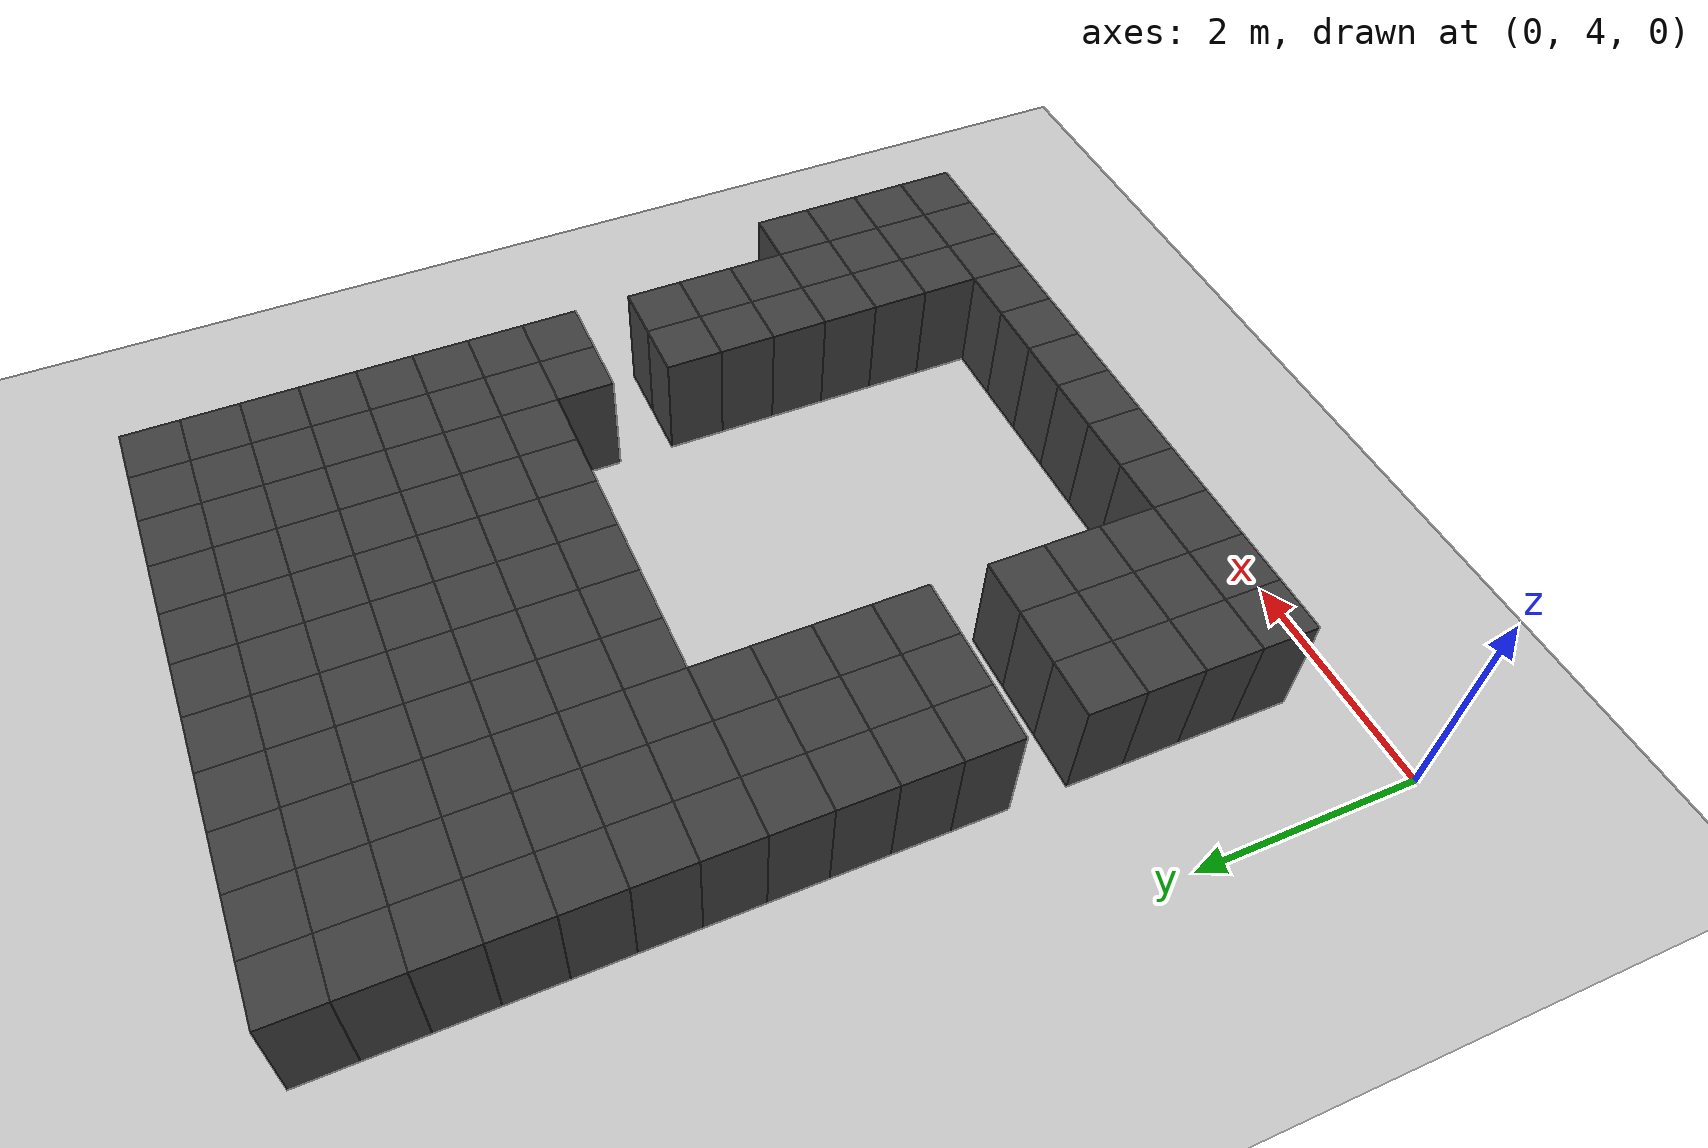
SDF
<sdf version="1.7">
 <world name="map_14190">
  <model name="ground_plane">
   <static>true</static>
   <link name="link">
    <collision name="collision">
     <geometry><plane><normal>0 0 1</normal><size>200 200</size></plane></geometry>
    </collision>
    <visual name="visual">
     <geometry><plane><normal>0 0 1</normal><size>200 200</size></plane></geometry>
     <material><ambient>0.8 0.8 0.8 1</ambient><diffuse>0.8 0.8 0.8 1</diffuse></material>
    </visual>
   </link>
  </model>
  <model name="maze_environment">
   <static>true</static>
   <link name="wall_27">
    <pose>1.250 12.250 0.500 0 0 0</pose>
    <collision name="col"><geometry><box><size>0.5 0.5 1.0</size></box></geometry></collision>
    <visual name="vis">
     <geometry><box><size>0.5 0.5 1.0</size></box></geometry>
     <material><ambient>0.15 0.15 0.15 1</ambient><diffuse>0.25 0.25 0.25 1</diffuse></material>
    </visual>
   </link>
   <link name="wall_28">
    <pose>1.750 12.250 0.500 0 0 0</pose>
    <collision name="col"><geometry><box><size>0.5 0.5 1.0</size></box></geometry></collision>
    <visual name="vis">
     <geometry><box><size>0.5 0.5 1.0</size></box></geometry>
     <material><ambient>0.15 0.15 0.15 1</ambient><diffuse>0.25 0.25 0.25 1</diffuse></material>
    </visual>
   </link>
   <link name="wall_29">
    <pose>2.250 12.250 0.500 0 0 0</pose>
    <collision name="col"><geometry><box><size>0.5 0.5 1.0</size></box></geometry></collision>
    <visual name="vis">
     <geometry><box><size>0.5 0.5 1.0</size></box></geometry>
     <material><ambient>0.15 0.15 0.15 1</ambient><diffuse>0.25 0.25 0.25 1</diffuse></material>
    </visual>
   </link>
   <link name="wall_30">
    <pose>2.750 12.250 0.500 0 0 0</pose>
    <collision name="col"><geometry><box><size>0.5 0.5 1.0</size></box></geometry></collision>
    <visual name="vis">
     <geometry><box><size>0.5 0.5 1.0</size></box></geometry>
     <material><ambient>0.15 0.15 0.15 1</ambient><diffuse>0.25 0.25 0.25 1</diffuse></material>
    </visual>
   </link>
   <link name="wall_31">
    <pose>3.250 12.250 0.500 0 0 0</pose>
    <collision name="col"><geometry><box><size>0.5 0.5 1.0</size></box></geometry></collision>
    <visual name="vis">
     <geometry><box><size>0.5 0.5 1.0</size></box></geometry>
     <material><ambient>0.15 0.15 0.15 1</ambient><diffuse>0.25 0.25 0.25 1</diffuse></material>
    </visual>
   </link>
   <link name="wall_32">
    <pose>3.750 12.250 0.500 0 0 0</pose>
    <collision name="col"><geometry><box><size>0.5 0.5 1.0</size></box></geometry></collision>
    <visual name="vis">
     <geometry><box><size>0.5 0.5 1.0</size></box></geometry>
     <material><ambient>0.15 0.15 0.15 1</ambient><diffuse>0.25 0.25 0.25 1</diffuse></material>
    </visual>
   </link>
   <link name="wall_33">
    <pose>4.250 12.250 0.500 0 0 0</pose>
    <collision name="col"><geometry><box><size>0.5 0.5 1.0</size></box></geometry></collision>
    <visual name="vis">
     <geometry><box><size>0.5 0.5 1.0</size></box></geometry>
     <material><ambient>0.15 0.15 0.15 1</ambient><diffuse>0.25 0.25 0.25 1</diffuse></material>
    </visual>
   </link>
   <link name="wall_34">
    <pose>4.750 12.250 0.500 0 0 0</pose>
    <collision name="col"><geometry><box><size>0.5 0.5 1.0</size></box></geometry></collision>
    <visual name="vis">
     <geometry><box><size>0.5 0.5 1.0</size></box></geometry>
     <material><ambient>0.15 0.15 0.15 1</ambient><diffuse>0.25 0.25 0.25 1</diffuse></material>
    </visual>
   </link>
   <link name="wall_35">
    <pose>5.250 12.250 0.500 0 0 0</pose>
    <collision name="col"><geometry><box><size>0.5 0.5 1.0</size></box></geometry></collision>
    <visual name="vis">
     <geometry><box><size>0.5 0.5 1.0</size></box></geometry>
     <material><ambient>0.15 0.15 0.15 1</ambient><diffuse>0.25 0.25 0.25 1</diffuse></material>
    </visual>
   </link>
   <link name="wall_36">
    <pose>5.750 12.250 0.500 0 0 0</pose>
    <collision name="col"><geometry><box><size>0.5 0.5 1.0</size></box></geometry></collision>
    <visual name="vis">
     <geometry><box><size>0.5 0.5 1.0</size></box></geometry>
     <material><ambient>0.15 0.15 0.15 1</ambient><diffuse>0.25 0.25 0.25 1</diffuse></material>
    </visual>
   </link>
   <link name="wall_37">
    <pose>6.250 12.250 0.500 0 0 0</pose>
    <collision name="col"><geometry><box><size>0.5 0.5 1.0</size></box></geometry></collision>
    <visual name="vis">
     <geometry><box><size>0.5 0.5 1.0</size></box></geometry>
     <material><ambient>0.15 0.15 0.15 1</ambient><diffuse>0.25 0.25 0.25 1</diffuse></material>
    </visual>
   </link>
   <link name="wall_74">
    <pose>1.250 11.750 0.500 0 0 0</pose>
    <collision name="col"><geometry><box><size>0.5 0.5 1.0</size></box></geometry></collision>
    <visual name="vis">
     <geometry><box><size>0.5 0.5 1.0</size></box></geometry>
     <material><ambient>0.15 0.15 0.15 1</ambient><diffuse>0.25 0.25 0.25 1</diffuse></material>
    </visual>
   </link>
   <link name="wall_75">
    <pose>1.750 11.750 0.500 0 0 0</pose>
    <collision name="col"><geometry><box><size>0.5 0.5 1.0</size></box></geometry></collision>
    <visual name="vis">
     <geometry><box><size>0.5 0.5 1.0</size></box></geometry>
     <material><ambient>0.15 0.15 0.15 1</ambient><diffuse>0.25 0.25 0.25 1</diffuse></material>
    </visual>
   </link>
   <link name="wall_76">
    <pose>2.250 11.750 0.500 0 0 0</pose>
    <collision name="col"><geometry><box><size>0.5 0.5 1.0</size></box></geometry></collision>
    <visual name="vis">
     <geometry><box><size>0.5 0.5 1.0</size></box></geometry>
     <material><ambient>0.15 0.15 0.15 1</ambient><diffuse>0.25 0.25 0.25 1</diffuse></material>
    </visual>
   </link>
   <link name="wall_77">
    <pose>2.750 11.750 0.500 0 0 0</pose>
    <collision name="col"><geometry><box><size>0.5 0.5 1.0</size></box></geometry></collision>
    <visual name="vis">
     <geometry><box><size>0.5 0.5 1.0</size></box></geometry>
     <material><ambient>0.15 0.15 0.15 1</ambient><diffuse>0.25 0.25 0.25 1</diffuse></material>
    </visual>
   </link>
   <link name="wall_78">
    <pose>3.250 11.750 0.500 0 0 0</pose>
    <collision name="col"><geometry><box><size>0.5 0.5 1.0</size></box></geometry></collision>
    <visual name="vis">
     <geometry><box><size>0.5 0.5 1.0</size></box></geometry>
     <material><ambient>0.15 0.15 0.15 1</ambient><diffuse>0.25 0.25 0.25 1</diffuse></material>
    </visual>
   </link>
   <link name="wall_79">
    <pose>3.750 11.750 0.500 0 0 0</pose>
    <collision name="col"><geometry><box><size>0.5 0.5 1.0</size></box></geometry></collision>
    <visual name="vis">
     <geometry><box><size>0.5 0.5 1.0</size></box></geometry>
     <material><ambient>0.15 0.15 0.15 1</ambient><diffuse>0.25 0.25 0.25 1</diffuse></material>
    </visual>
   </link>
   <link name="wall_80">
    <pose>4.250 11.750 0.500 0 0 0</pose>
    <collision name="col"><geometry><box><size>0.5 0.5 1.0</size></box></geometry></collision>
    <visual name="vis">
     <geometry><box><size>0.5 0.5 1.0</size></box></geometry>
     <material><ambient>0.15 0.15 0.15 1</ambient><diffuse>0.25 0.25 0.25 1</diffuse></material>
    </visual>
   </link>
   <link name="wall_81">
    <pose>4.750 11.750 0.500 0 0 0</pose>
    <collision name="col"><geometry><box><size>0.5 0.5 1.0</size></box></geometry></collision>
    <visual name="vis">
     <geometry><box><size>0.5 0.5 1.0</size></box></geometry>
     <material><ambient>0.15 0.15 0.15 1</ambient><diffuse>0.25 0.25 0.25 1</diffuse></material>
    </visual>
   </link>
   <link name="wall_82">
    <pose>5.250 11.750 0.500 0 0 0</pose>
    <collision name="col"><geometry><box><size>0.5 0.5 1.0</size></box></geometry></collision>
    <visual name="vis">
     <geometry><box><size>0.5 0.5 1.0</size></box></geometry>
     <material><ambient>0.15 0.15 0.15 1</ambient><diffuse>0.25 0.25 0.25 1</diffuse></material>
    </visual>
   </link>
   <link name="wall_83">
    <pose>5.750 11.750 0.500 0 0 0</pose>
    <collision name="col"><geometry><box><size>0.5 0.5 1.0</size></box></geometry></collision>
    <visual name="vis">
     <geometry><box><size>0.5 0.5 1.0</size></box></geometry>
     <material><ambient>0.15 0.15 0.15 1</ambient><diffuse>0.25 0.25 0.25 1</diffuse></material>
    </visual>
   </link>
   <link name="wall_84">
    <pose>6.250 11.750 0.500 0 0 0</pose>
    <collision name="col"><geometry><box><size>0.5 0.5 1.0</size></box></geometry></collision>
    <visual name="vis">
     <geometry><box><size>0.5 0.5 1.0</size></box></geometry>
     <material><ambient>0.15 0.15 0.15 1</ambient><diffuse>0.25 0.25 0.25 1</diffuse></material>
    </visual>
   </link>
   <link name="wall_117">
    <pose>1.250 11.250 0.500 0 0 0</pose>
    <collision name="col"><geometry><box><size>0.5 0.5 1.0</size></box></geometry></collision>
    <visual name="vis">
     <geometry><box><size>0.5 0.5 1.0</size></box></geometry>
     <material><ambient>0.15 0.15 0.15 1</ambient><diffuse>0.25 0.25 0.25 1</diffuse></material>
    </visual>
   </link>
   <link name="wall_118">
    <pose>1.750 11.250 0.500 0 0 0</pose>
    <collision name="col"><geometry><box><size>0.5 0.5 1.0</size></box></geometry></collision>
    <visual name="vis">
     <geometry><box><size>0.5 0.5 1.0</size></box></geometry>
     <material><ambient>0.15 0.15 0.15 1</ambient><diffuse>0.25 0.25 0.25 1</diffuse></material>
    </visual>
   </link>
   <link name="wall_119">
    <pose>2.250 11.250 0.500 0 0 0</pose>
    <collision name="col"><geometry><box><size>0.5 0.5 1.0</size></box></geometry></collision>
    <visual name="vis">
     <geometry><box><size>0.5 0.5 1.0</size></box></geometry>
     <material><ambient>0.15 0.15 0.15 1</ambient><diffuse>0.25 0.25 0.25 1</diffuse></material>
    </visual>
   </link>
   <link name="wall_120">
    <pose>2.750 11.250 0.500 0 0 0</pose>
    <collision name="col"><geometry><box><size>0.5 0.5 1.0</size></box></geometry></collision>
    <visual name="vis">
     <geometry><box><size>0.5 0.5 1.0</size></box></geometry>
     <material><ambient>0.15 0.15 0.15 1</ambient><diffuse>0.25 0.25 0.25 1</diffuse></material>
    </visual>
   </link>
   <link name="wall_121">
    <pose>3.250 11.250 0.500 0 0 0</pose>
    <collision name="col"><geometry><box><size>0.5 0.5 1.0</size></box></geometry></collision>
    <visual name="vis">
     <geometry><box><size>0.5 0.5 1.0</size></box></geometry>
     <material><ambient>0.15 0.15 0.15 1</ambient><diffuse>0.25 0.25 0.25 1</diffuse></material>
    </visual>
   </link>
   <link name="wall_122">
    <pose>3.750 11.250 0.500 0 0 0</pose>
    <collision name="col"><geometry><box><size>0.5 0.5 1.0</size></box></geometry></collision>
    <visual name="vis">
     <geometry><box><size>0.5 0.5 1.0</size></box></geometry>
     <material><ambient>0.15 0.15 0.15 1</ambient><diffuse>0.25 0.25 0.25 1</diffuse></material>
    </visual>
   </link>
   <link name="wall_123">
    <pose>4.250 11.250 0.500 0 0 0</pose>
    <collision name="col"><geometry><box><size>0.5 0.5 1.0</size></box></geometry></collision>
    <visual name="vis">
     <geometry><box><size>0.5 0.5 1.0</size></box></geometry>
     <material><ambient>0.15 0.15 0.15 1</ambient><diffuse>0.25 0.25 0.25 1</diffuse></material>
    </visual>
   </link>
   <link name="wall_124">
    <pose>4.750 11.250 0.500 0 0 0</pose>
    <collision name="col"><geometry><box><size>0.5 0.5 1.0</size></box></geometry></collision>
    <visual name="vis">
     <geometry><box><size>0.5 0.5 1.0</size></box></geometry>
     <material><ambient>0.15 0.15 0.15 1</ambient><diffuse>0.25 0.25 0.25 1</diffuse></material>
    </visual>
   </link>
   <link name="wall_125">
    <pose>5.250 11.250 0.500 0 0 0</pose>
    <collision name="col"><geometry><box><size>0.5 0.5 1.0</size></box></geometry></collision>
    <visual name="vis">
     <geometry><box><size>0.5 0.5 1.0</size></box></geometry>
     <material><ambient>0.15 0.15 0.15 1</ambient><diffuse>0.25 0.25 0.25 1</diffuse></material>
    </visual>
   </link>
   <link name="wall_126">
    <pose>5.750 11.250 0.500 0 0 0</pose>
    <collision name="col"><geometry><box><size>0.5 0.5 1.0</size></box></geometry></collision>
    <visual name="vis">
     <geometry><box><size>0.5 0.5 1.0</size></box></geometry>
     <material><ambient>0.15 0.15 0.15 1</ambient><diffuse>0.25 0.25 0.25 1</diffuse></material>
    </visual>
   </link>
   <link name="wall_127">
    <pose>6.250 11.250 0.500 0 0 0</pose>
    <collision name="col"><geometry><box><size>0.5 0.5 1.0</size></box></geometry></collision>
    <visual name="vis">
     <geometry><box><size>0.5 0.5 1.0</size></box></geometry>
     <material><ambient>0.15 0.15 0.15 1</ambient><diffuse>0.25 0.25 0.25 1</diffuse></material>
    </visual>
   </link>
   <link name="wall_160">
    <pose>1.250 10.750 0.500 0 0 0</pose>
    <collision name="col"><geometry><box><size>0.5 0.5 1.0</size></box></geometry></collision>
    <visual name="vis">
     <geometry><box><size>0.5 0.5 1.0</size></box></geometry>
     <material><ambient>0.15 0.15 0.15 1</ambient><diffuse>0.25 0.25 0.25 1</diffuse></material>
    </visual>
   </link>
   <link name="wall_161">
    <pose>1.750 10.750 0.500 0 0 0</pose>
    <collision name="col"><geometry><box><size>0.5 0.5 1.0</size></box></geometry></collision>
    <visual name="vis">
     <geometry><box><size>0.5 0.5 1.0</size></box></geometry>
     <material><ambient>0.15 0.15 0.15 1</ambient><diffuse>0.25 0.25 0.25 1</diffuse></material>
    </visual>
   </link>
   <link name="wall_162">
    <pose>2.250 10.750 0.500 0 0 0</pose>
    <collision name="col"><geometry><box><size>0.5 0.5 1.0</size></box></geometry></collision>
    <visual name="vis">
     <geometry><box><size>0.5 0.5 1.0</size></box></geometry>
     <material><ambient>0.15 0.15 0.15 1</ambient><diffuse>0.25 0.25 0.25 1</diffuse></material>
    </visual>
   </link>
   <link name="wall_163">
    <pose>2.750 10.750 0.500 0 0 0</pose>
    <collision name="col"><geometry><box><size>0.5 0.5 1.0</size></box></geometry></collision>
    <visual name="vis">
     <geometry><box><size>0.5 0.5 1.0</size></box></geometry>
     <material><ambient>0.15 0.15 0.15 1</ambient><diffuse>0.25 0.25 0.25 1</diffuse></material>
    </visual>
   </link>
   <link name="wall_164">
    <pose>3.250 10.750 0.500 0 0 0</pose>
    <collision name="col"><geometry><box><size>0.5 0.5 1.0</size></box></geometry></collision>
    <visual name="vis">
     <geometry><box><size>0.5 0.5 1.0</size></box></geometry>
     <material><ambient>0.15 0.15 0.15 1</ambient><diffuse>0.25 0.25 0.25 1</diffuse></material>
    </visual>
   </link>
   <link name="wall_165">
    <pose>3.750 10.750 0.500 0 0 0</pose>
    <collision name="col"><geometry><box><size>0.5 0.5 1.0</size></box></geometry></collision>
    <visual name="vis">
     <geometry><box><size>0.5 0.5 1.0</size></box></geometry>
     <material><ambient>0.15 0.15 0.15 1</ambient><diffuse>0.25 0.25 0.25 1</diffuse></material>
    </visual>
   </link>
   <link name="wall_166">
    <pose>4.250 10.750 0.500 0 0 0</pose>
    <collision name="col"><geometry><box><size>0.5 0.5 1.0</size></box></geometry></collision>
    <visual name="vis">
     <geometry><box><size>0.5 0.5 1.0</size></box></geometry>
     <material><ambient>0.15 0.15 0.15 1</ambient><diffuse>0.25 0.25 0.25 1</diffuse></material>
    </visual>
   </link>
   <link name="wall_167">
    <pose>4.750 10.750 0.500 0 0 0</pose>
    <collision name="col"><geometry><box><size>0.5 0.5 1.0</size></box></geometry></collision>
    <visual name="vis">
     <geometry><box><size>0.5 0.5 1.0</size></box></geometry>
     <material><ambient>0.15 0.15 0.15 1</ambient><diffuse>0.25 0.25 0.25 1</diffuse></material>
    </visual>
   </link>
   <link name="wall_168">
    <pose>5.250 10.750 0.500 0 0 0</pose>
    <collision name="col"><geometry><box><size>0.5 0.5 1.0</size></box></geometry></collision>
    <visual name="vis">
     <geometry><box><size>0.5 0.5 1.0</size></box></geometry>
     <material><ambient>0.15 0.15 0.15 1</ambient><diffuse>0.25 0.25 0.25 1</diffuse></material>
    </visual>
   </link>
   <link name="wall_169">
    <pose>5.750 10.750 0.500 0 0 0</pose>
    <collision name="col"><geometry><box><size>0.5 0.5 1.0</size></box></geometry></collision>
    <visual name="vis">
     <geometry><box><size>0.5 0.5 1.0</size></box></geometry>
     <material><ambient>0.15 0.15 0.15 1</ambient><diffuse>0.25 0.25 0.25 1</diffuse></material>
    </visual>
   </link>
   <link name="wall_170">
    <pose>6.250 10.750 0.500 0 0 0</pose>
    <collision name="col"><geometry><box><size>0.5 0.5 1.0</size></box></geometry></collision>
    <visual name="vis">
     <geometry><box><size>0.5 0.5 1.0</size></box></geometry>
     <material><ambient>0.15 0.15 0.15 1</ambient><diffuse>0.25 0.25 0.25 1</diffuse></material>
    </visual>
   </link>
   <link name="wall_205">
    <pose>1.250 10.250 0.500 0 0 0</pose>
    <collision name="col"><geometry><box><size>0.5 0.5 1.0</size></box></geometry></collision>
    <visual name="vis">
     <geometry><box><size>0.5 0.5 1.0</size></box></geometry>
     <material><ambient>0.15 0.15 0.15 1</ambient><diffuse>0.25 0.25 0.25 1</diffuse></material>
    </visual>
   </link>
   <link name="wall_206">
    <pose>1.750 10.250 0.500 0 0 0</pose>
    <collision name="col"><geometry><box><size>0.5 0.5 1.0</size></box></geometry></collision>
    <visual name="vis">
     <geometry><box><size>0.5 0.5 1.0</size></box></geometry>
     <material><ambient>0.15 0.15 0.15 1</ambient><diffuse>0.25 0.25 0.25 1</diffuse></material>
    </visual>
   </link>
   <link name="wall_207">
    <pose>2.250 10.250 0.500 0 0 0</pose>
    <collision name="col"><geometry><box><size>0.5 0.5 1.0</size></box></geometry></collision>
    <visual name="vis">
     <geometry><box><size>0.5 0.5 1.0</size></box></geometry>
     <material><ambient>0.15 0.15 0.15 1</ambient><diffuse>0.25 0.25 0.25 1</diffuse></material>
    </visual>
   </link>
   <link name="wall_208">
    <pose>2.750 10.250 0.500 0 0 0</pose>
    <collision name="col"><geometry><box><size>0.5 0.5 1.0</size></box></geometry></collision>
    <visual name="vis">
     <geometry><box><size>0.5 0.5 1.0</size></box></geometry>
     <material><ambient>0.15 0.15 0.15 1</ambient><diffuse>0.25 0.25 0.25 1</diffuse></material>
    </visual>
   </link>
   <link name="wall_209">
    <pose>3.250 10.250 0.500 0 0 0</pose>
    <collision name="col"><geometry><box><size>0.5 0.5 1.0</size></box></geometry></collision>
    <visual name="vis">
     <geometry><box><size>0.5 0.5 1.0</size></box></geometry>
     <material><ambient>0.15 0.15 0.15 1</ambient><diffuse>0.25 0.25 0.25 1</diffuse></material>
    </visual>
   </link>
   <link name="wall_210">
    <pose>3.750 10.250 0.500 0 0 0</pose>
    <collision name="col"><geometry><box><size>0.5 0.5 1.0</size></box></geometry></collision>
    <visual name="vis">
     <geometry><box><size>0.5 0.5 1.0</size></box></geometry>
     <material><ambient>0.15 0.15 0.15 1</ambient><diffuse>0.25 0.25 0.25 1</diffuse></material>
    </visual>
   </link>
   <link name="wall_211">
    <pose>4.250 10.250 0.500 0 0 0</pose>
    <collision name="col"><geometry><box><size>0.5 0.5 1.0</size></box></geometry></collision>
    <visual name="vis">
     <geometry><box><size>0.5 0.5 1.0</size></box></geometry>
     <material><ambient>0.15 0.15 0.15 1</ambient><diffuse>0.25 0.25 0.25 1</diffuse></material>
    </visual>
   </link>
   <link name="wall_212">
    <pose>4.750 10.250 0.500 0 0 0</pose>
    <collision name="col"><geometry><box><size>0.5 0.5 1.0</size></box></geometry></collision>
    <visual name="vis">
     <geometry><box><size>0.5 0.5 1.0</size></box></geometry>
     <material><ambient>0.15 0.15 0.15 1</ambient><diffuse>0.25 0.25 0.25 1</diffuse></material>
    </visual>
   </link>
   <link name="wall_213">
    <pose>5.250 10.250 0.500 0 0 0</pose>
    <collision name="col"><geometry><box><size>0.5 0.5 1.0</size></box></geometry></collision>
    <visual name="vis">
     <geometry><box><size>0.5 0.5 1.0</size></box></geometry>
     <material><ambient>0.15 0.15 0.15 1</ambient><diffuse>0.25 0.25 0.25 1</diffuse></material>
    </visual>
   </link>
   <link name="wall_214">
    <pose>5.750 10.250 0.500 0 0 0</pose>
    <collision name="col"><geometry><box><size>0.5 0.5 1.0</size></box></geometry></collision>
    <visual name="vis">
     <geometry><box><size>0.5 0.5 1.0</size></box></geometry>
     <material><ambient>0.15 0.15 0.15 1</ambient><diffuse>0.25 0.25 0.25 1</diffuse></material>
    </visual>
   </link>
   <link name="wall_215">
    <pose>6.250 10.250 0.500 0 0 0</pose>
    <collision name="col"><geometry><box><size>0.5 0.5 1.0</size></box></geometry></collision>
    <visual name="vis">
     <geometry><box><size>0.5 0.5 1.0</size></box></geometry>
     <material><ambient>0.15 0.15 0.15 1</ambient><diffuse>0.25 0.25 0.25 1</diffuse></material>
    </visual>
   </link>
   <link name="wall_239">
    <pose>1.250 9.750 0.500 0 0 0</pose>
    <collision name="col"><geometry><box><size>0.5 0.5 1.0</size></box></geometry></collision>
    <visual name="vis">
     <geometry><box><size>0.5 0.5 1.0</size></box></geometry>
     <material><ambient>0.15 0.15 0.15 1</ambient><diffuse>0.25 0.25 0.25 1</diffuse></material>
    </visual>
   </link>
   <link name="wall_240">
    <pose>1.750 9.750 0.500 0 0 0</pose>
    <collision name="col"><geometry><box><size>0.5 0.5 1.0</size></box></geometry></collision>
    <visual name="vis">
     <geometry><box><size>0.5 0.5 1.0</size></box></geometry>
     <material><ambient>0.15 0.15 0.15 1</ambient><diffuse>0.25 0.25 0.25 1</diffuse></material>
    </visual>
   </link>
   <link name="wall_241">
    <pose>2.250 9.750 0.500 0 0 0</pose>
    <collision name="col"><geometry><box><size>0.5 0.5 1.0</size></box></geometry></collision>
    <visual name="vis">
     <geometry><box><size>0.5 0.5 1.0</size></box></geometry>
     <material><ambient>0.15 0.15 0.15 1</ambient><diffuse>0.25 0.25 0.25 1</diffuse></material>
    </visual>
   </link>
   <link name="wall_242">
    <pose>2.750 9.750 0.500 0 0 0</pose>
    <collision name="col"><geometry><box><size>0.5 0.5 1.0</size></box></geometry></collision>
    <visual name="vis">
     <geometry><box><size>0.5 0.5 1.0</size></box></geometry>
     <material><ambient>0.15 0.15 0.15 1</ambient><diffuse>0.25 0.25 0.25 1</diffuse></material>
    </visual>
   </link>
   <link name="wall_243">
    <pose>3.250 9.750 0.500 0 0 0</pose>
    <collision name="col"><geometry><box><size>0.5 0.5 1.0</size></box></geometry></collision>
    <visual name="vis">
     <geometry><box><size>0.5 0.5 1.0</size></box></geometry>
     <material><ambient>0.15 0.15 0.15 1</ambient><diffuse>0.25 0.25 0.25 1</diffuse></material>
    </visual>
   </link>
   <link name="wall_244">
    <pose>3.750 9.750 0.500 0 0 0</pose>
    <collision name="col"><geometry><box><size>0.5 0.5 1.0</size></box></geometry></collision>
    <visual name="vis">
     <geometry><box><size>0.5 0.5 1.0</size></box></geometry>
     <material><ambient>0.15 0.15 0.15 1</ambient><diffuse>0.25 0.25 0.25 1</diffuse></material>
    </visual>
   </link>
   <link name="wall_245">
    <pose>4.250 9.750 0.500 0 0 0</pose>
    <collision name="col"><geometry><box><size>0.5 0.5 1.0</size></box></geometry></collision>
    <visual name="vis">
     <geometry><box><size>0.5 0.5 1.0</size></box></geometry>
     <material><ambient>0.15 0.15 0.15 1</ambient><diffuse>0.25 0.25 0.25 1</diffuse></material>
    </visual>
   </link>
   <link name="wall_246">
    <pose>4.750 9.750 0.500 0 0 0</pose>
    <collision name="col"><geometry><box><size>0.5 0.5 1.0</size></box></geometry></collision>
    <visual name="vis">
     <geometry><box><size>0.5 0.5 1.0</size></box></geometry>
     <material><ambient>0.15 0.15 0.15 1</ambient><diffuse>0.25 0.25 0.25 1</diffuse></material>
    </visual>
   </link>
   <link name="wall_247">
    <pose>5.250 9.750 0.500 0 0 0</pose>
    <collision name="col"><geometry><box><size>0.5 0.5 1.0</size></box></geometry></collision>
    <visual name="vis">
     <geometry><box><size>0.5 0.5 1.0</size></box></geometry>
     <material><ambient>0.15 0.15 0.15 1</ambient><diffuse>0.25 0.25 0.25 1</diffuse></material>
    </visual>
   </link>
   <link name="wall_248">
    <pose>5.750 9.750 0.500 0 0 0</pose>
    <collision name="col"><geometry><box><size>0.5 0.5 1.0</size></box></geometry></collision>
    <visual name="vis">
     <geometry><box><size>0.5 0.5 1.0</size></box></geometry>
     <material><ambient>0.15 0.15 0.15 1</ambient><diffuse>0.25 0.25 0.25 1</diffuse></material>
    </visual>
   </link>
   <link name="wall_249">
    <pose>6.250 9.750 0.500 0 0 0</pose>
    <collision name="col"><geometry><box><size>0.5 0.5 1.0</size></box></geometry></collision>
    <visual name="vis">
     <geometry><box><size>0.5 0.5 1.0</size></box></geometry>
     <material><ambient>0.15 0.15 0.15 1</ambient><diffuse>0.25 0.25 0.25 1</diffuse></material>
    </visual>
   </link>
   <link name="wall_279">
    <pose>1.250 9.250 0.500 0 0 0</pose>
    <collision name="col"><geometry><box><size>0.5 0.5 1.0</size></box></geometry></collision>
    <visual name="vis">
     <geometry><box><size>0.5 0.5 1.0</size></box></geometry>
     <material><ambient>0.15 0.15 0.15 1</ambient><diffuse>0.25 0.25 0.25 1</diffuse></material>
    </visual>
   </link>
   <link name="wall_280">
    <pose>1.750 9.250 0.500 0 0 0</pose>
    <collision name="col"><geometry><box><size>0.5 0.5 1.0</size></box></geometry></collision>
    <visual name="vis">
     <geometry><box><size>0.5 0.5 1.0</size></box></geometry>
     <material><ambient>0.15 0.15 0.15 1</ambient><diffuse>0.25 0.25 0.25 1</diffuse></material>
    </visual>
   </link>
   <link name="wall_281">
    <pose>2.250 9.250 0.500 0 0 0</pose>
    <collision name="col"><geometry><box><size>0.5 0.5 1.0</size></box></geometry></collision>
    <visual name="vis">
     <geometry><box><size>0.5 0.5 1.0</size></box></geometry>
     <material><ambient>0.15 0.15 0.15 1</ambient><diffuse>0.25 0.25 0.25 1</diffuse></material>
    </visual>
   </link>
   <link name="wall_282">
    <pose>2.750 9.250 0.500 0 0 0</pose>
    <collision name="col"><geometry><box><size>0.5 0.5 1.0</size></box></geometry></collision>
    <visual name="vis">
     <geometry><box><size>0.5 0.5 1.0</size></box></geometry>
     <material><ambient>0.15 0.15 0.15 1</ambient><diffuse>0.25 0.25 0.25 1</diffuse></material>
    </visual>
   </link>
   <link name="wall_283">
    <pose>3.250 9.250 0.500 0 0 0</pose>
    <collision name="col"><geometry><box><size>0.5 0.5 1.0</size></box></geometry></collision>
    <visual name="vis">
     <geometry><box><size>0.5 0.5 1.0</size></box></geometry>
     <material><ambient>0.15 0.15 0.15 1</ambient><diffuse>0.25 0.25 0.25 1</diffuse></material>
    </visual>
   </link>
   <link name="wall_284">
    <pose>3.750 9.250 0.500 0 0 0</pose>
    <collision name="col"><geometry><box><size>0.5 0.5 1.0</size></box></geometry></collision>
    <visual name="vis">
     <geometry><box><size>0.5 0.5 1.0</size></box></geometry>
     <material><ambient>0.15 0.15 0.15 1</ambient><diffuse>0.25 0.25 0.25 1</diffuse></material>
    </visual>
   </link>
   <link name="wall_285">
    <pose>4.250 9.250 0.500 0 0 0</pose>
    <collision name="col"><geometry><box><size>0.5 0.5 1.0</size></box></geometry></collision>
    <visual name="vis">
     <geometry><box><size>0.5 0.5 1.0</size></box></geometry>
     <material><ambient>0.15 0.15 0.15 1</ambient><diffuse>0.25 0.25 0.25 1</diffuse></material>
    </visual>
   </link>
   <link name="wall_286">
    <pose>4.750 9.250 0.500 0 0 0</pose>
    <collision name="col"><geometry><box><size>0.5 0.5 1.0</size></box></geometry></collision>
    <visual name="vis">
     <geometry><box><size>0.5 0.5 1.0</size></box></geometry>
     <material><ambient>0.15 0.15 0.15 1</ambient><diffuse>0.25 0.25 0.25 1</diffuse></material>
    </visual>
   </link>
   <link name="wall_287">
    <pose>5.250 9.250 0.500 0 0 0</pose>
    <collision name="col"><geometry><box><size>0.5 0.5 1.0</size></box></geometry></collision>
    <visual name="vis">
     <geometry><box><size>0.5 0.5 1.0</size></box></geometry>
     <material><ambient>0.15 0.15 0.15 1</ambient><diffuse>0.25 0.25 0.25 1</diffuse></material>
    </visual>
   </link>
   <link name="wall_288">
    <pose>5.750 9.250 0.500 0 0 0</pose>
    <collision name="col"><geometry><box><size>0.5 0.5 1.0</size></box></geometry></collision>
    <visual name="vis">
     <geometry><box><size>0.5 0.5 1.0</size></box></geometry>
     <material><ambient>0.15 0.15 0.15 1</ambient><diffuse>0.25 0.25 0.25 1</diffuse></material>
    </visual>
   </link>
   <link name="wall_289">
    <pose>6.250 9.250 0.500 0 0 0</pose>
    <collision name="col"><geometry><box><size>0.5 0.5 1.0</size></box></geometry></collision>
    <visual name="vis">
     <geometry><box><size>0.5 0.5 1.0</size></box></geometry>
     <material><ambient>0.15 0.15 0.15 1</ambient><diffuse>0.25 0.25 0.25 1</diffuse></material>
    </visual>
   </link>
   <link name="wall_319">
    <pose>1.250 8.750 0.500 0 0 0</pose>
    <collision name="col"><geometry><box><size>0.5 0.5 1.0</size></box></geometry></collision>
    <visual name="vis">
     <geometry><box><size>0.5 0.5 1.0</size></box></geometry>
     <material><ambient>0.15 0.15 0.15 1</ambient><diffuse>0.25 0.25 0.25 1</diffuse></material>
    </visual>
   </link>
   <link name="wall_320">
    <pose>1.750 8.750 0.500 0 0 0</pose>
    <collision name="col"><geometry><box><size>0.5 0.5 1.0</size></box></geometry></collision>
    <visual name="vis">
     <geometry><box><size>0.5 0.5 1.0</size></box></geometry>
     <material><ambient>0.15 0.15 0.15 1</ambient><diffuse>0.25 0.25 0.25 1</diffuse></material>
    </visual>
   </link>
   <link name="wall_321">
    <pose>2.250 8.750 0.500 0 0 0</pose>
    <collision name="col"><geometry><box><size>0.5 0.5 1.0</size></box></geometry></collision>
    <visual name="vis">
     <geometry><box><size>0.5 0.5 1.0</size></box></geometry>
     <material><ambient>0.15 0.15 0.15 1</ambient><diffuse>0.25 0.25 0.25 1</diffuse></material>
    </visual>
   </link>
   <link name="wall_322">
    <pose>5.750 8.750 0.500 0 0 0</pose>
    <collision name="col"><geometry><box><size>0.5 0.5 1.0</size></box></geometry></collision>
    <visual name="vis">
     <geometry><box><size>0.5 0.5 1.0</size></box></geometry>
     <material><ambient>0.15 0.15 0.15 1</ambient><diffuse>0.25 0.25 0.25 1</diffuse></material>
    </visual>
   </link>
   <link name="wall_323">
    <pose>6.250 8.750 0.500 0 0 0</pose>
    <collision name="col"><geometry><box><size>0.5 0.5 1.0</size></box></geometry></collision>
    <visual name="vis">
     <geometry><box><size>0.5 0.5 1.0</size></box></geometry>
     <material><ambient>0.15 0.15 0.15 1</ambient><diffuse>0.25 0.25 0.25 1</diffuse></material>
    </visual>
   </link>
   <link name="wall_353">
    <pose>1.250 8.250 0.500 0 0 0</pose>
    <collision name="col"><geometry><box><size>0.5 0.5 1.0</size></box></geometry></collision>
    <visual name="vis">
     <geometry><box><size>0.5 0.5 1.0</size></box></geometry>
     <material><ambient>0.15 0.15 0.15 1</ambient><diffuse>0.25 0.25 0.25 1</diffuse></material>
    </visual>
   </link>
   <link name="wall_354">
    <pose>1.750 8.250 0.500 0 0 0</pose>
    <collision name="col"><geometry><box><size>0.5 0.5 1.0</size></box></geometry></collision>
    <visual name="vis">
     <geometry><box><size>0.5 0.5 1.0</size></box></geometry>
     <material><ambient>0.15 0.15 0.15 1</ambient><diffuse>0.25 0.25 0.25 1</diffuse></material>
    </visual>
   </link>
   <link name="wall_355">
    <pose>2.250 8.250 0.500 0 0 0</pose>
    <collision name="col"><geometry><box><size>0.5 0.5 1.0</size></box></geometry></collision>
    <visual name="vis">
     <geometry><box><size>0.5 0.5 1.0</size></box></geometry>
     <material><ambient>0.15 0.15 0.15 1</ambient><diffuse>0.25 0.25 0.25 1</diffuse></material>
    </visual>
   </link>
   <link name="wall_387">
    <pose>1.250 7.750 0.500 0 0 0</pose>
    <collision name="col"><geometry><box><size>0.5 0.5 1.0</size></box></geometry></collision>
    <visual name="vis">
     <geometry><box><size>0.5 0.5 1.0</size></box></geometry>
     <material><ambient>0.15 0.15 0.15 1</ambient><diffuse>0.25 0.25 0.25 1</diffuse></material>
    </visual>
   </link>
   <link name="wall_388">
    <pose>1.750 7.750 0.500 0 0 0</pose>
    <collision name="col"><geometry><box><size>0.5 0.5 1.0</size></box></geometry></collision>
    <visual name="vis">
     <geometry><box><size>0.5 0.5 1.0</size></box></geometry>
     <material><ambient>0.15 0.15 0.15 1</ambient><diffuse>0.25 0.25 0.25 1</diffuse></material>
    </visual>
   </link>
   <link name="wall_389">
    <pose>2.250 7.750 0.500 0 0 0</pose>
    <collision name="col"><geometry><box><size>0.5 0.5 1.0</size></box></geometry></collision>
    <visual name="vis">
     <geometry><box><size>0.5 0.5 1.0</size></box></geometry>
     <material><ambient>0.15 0.15 0.15 1</ambient><diffuse>0.25 0.25 0.25 1</diffuse></material>
    </visual>
   </link>
   <link name="wall_390">
    <pose>5.750 7.750 0.500 0 0 0</pose>
    <collision name="col"><geometry><box><size>0.5 0.5 1.0</size></box></geometry></collision>
    <visual name="vis">
     <geometry><box><size>0.5 0.5 1.0</size></box></geometry>
     <material><ambient>0.15 0.15 0.15 1</ambient><diffuse>0.25 0.25 0.25 1</diffuse></material>
    </visual>
   </link>
   <link name="wall_391">
    <pose>6.250 7.750 0.500 0 0 0</pose>
    <collision name="col"><geometry><box><size>0.5 0.5 1.0</size></box></geometry></collision>
    <visual name="vis">
     <geometry><box><size>0.5 0.5 1.0</size></box></geometry>
     <material><ambient>0.15 0.15 0.15 1</ambient><diffuse>0.25 0.25 0.25 1</diffuse></material>
    </visual>
   </link>
   <link name="wall_416">
    <pose>1.250 7.250 0.500 0 0 0</pose>
    <collision name="col"><geometry><box><size>0.5 0.5 1.0</size></box></geometry></collision>
    <visual name="vis">
     <geometry><box><size>0.5 0.5 1.0</size></box></geometry>
     <material><ambient>0.15 0.15 0.15 1</ambient><diffuse>0.25 0.25 0.25 1</diffuse></material>
    </visual>
   </link>
   <link name="wall_417">
    <pose>1.750 7.250 0.500 0 0 0</pose>
    <collision name="col"><geometry><box><size>0.5 0.5 1.0</size></box></geometry></collision>
    <visual name="vis">
     <geometry><box><size>0.5 0.5 1.0</size></box></geometry>
     <material><ambient>0.15 0.15 0.15 1</ambient><diffuse>0.25 0.25 0.25 1</diffuse></material>
    </visual>
   </link>
   <link name="wall_418">
    <pose>2.250 7.250 0.500 0 0 0</pose>
    <collision name="col"><geometry><box><size>0.5 0.5 1.0</size></box></geometry></collision>
    <visual name="vis">
     <geometry><box><size>0.5 0.5 1.0</size></box></geometry>
     <material><ambient>0.15 0.15 0.15 1</ambient><diffuse>0.25 0.25 0.25 1</diffuse></material>
    </visual>
   </link>
   <link name="wall_419">
    <pose>5.750 7.250 0.500 0 0 0</pose>
    <collision name="col"><geometry><box><size>0.5 0.5 1.0</size></box></geometry></collision>
    <visual name="vis">
     <geometry><box><size>0.5 0.5 1.0</size></box></geometry>
     <material><ambient>0.15 0.15 0.15 1</ambient><diffuse>0.25 0.25 0.25 1</diffuse></material>
    </visual>
   </link>
   <link name="wall_420">
    <pose>6.250 7.250 0.500 0 0 0</pose>
    <collision name="col"><geometry><box><size>0.5 0.5 1.0</size></box></geometry></collision>
    <visual name="vis">
     <geometry><box><size>0.5 0.5 1.0</size></box></geometry>
     <material><ambient>0.15 0.15 0.15 1</ambient><diffuse>0.25 0.25 0.25 1</diffuse></material>
    </visual>
   </link>
   <link name="wall_443">
    <pose>5.750 6.750 0.500 0 0 0</pose>
    <collision name="col"><geometry><box><size>0.5 0.5 1.0</size></box></geometry></collision>
    <visual name="vis">
     <geometry><box><size>0.5 0.5 1.0</size></box></geometry>
     <material><ambient>0.15 0.15 0.15 1</ambient><diffuse>0.25 0.25 0.25 1</diffuse></material>
    </visual>
   </link>
   <link name="wall_444">
    <pose>6.250 6.750 0.500 0 0 0</pose>
    <collision name="col"><geometry><box><size>0.5 0.5 1.0</size></box></geometry></collision>
    <visual name="vis">
     <geometry><box><size>0.5 0.5 1.0</size></box></geometry>
     <material><ambient>0.15 0.15 0.15 1</ambient><diffuse>0.25 0.25 0.25 1</diffuse></material>
    </visual>
   </link>
   <link name="wall_462">
    <pose>1.250 6.250 0.500 0 0 0</pose>
    <collision name="col"><geometry><box><size>0.5 0.5 1.0</size></box></geometry></collision>
    <visual name="vis">
     <geometry><box><size>0.5 0.5 1.0</size></box></geometry>
     <material><ambient>0.15 0.15 0.15 1</ambient><diffuse>0.25 0.25 0.25 1</diffuse></material>
    </visual>
   </link>
   <link name="wall_463">
    <pose>1.750 6.250 0.500 0 0 0</pose>
    <collision name="col"><geometry><box><size>0.5 0.5 1.0</size></box></geometry></collision>
    <visual name="vis">
     <geometry><box><size>0.5 0.5 1.0</size></box></geometry>
     <material><ambient>0.15 0.15 0.15 1</ambient><diffuse>0.25 0.25 0.25 1</diffuse></material>
    </visual>
   </link>
   <link name="wall_464">
    <pose>2.250 6.250 0.500 0 0 0</pose>
    <collision name="col"><geometry><box><size>0.5 0.5 1.0</size></box></geometry></collision>
    <visual name="vis">
     <geometry><box><size>0.5 0.5 1.0</size></box></geometry>
     <material><ambient>0.15 0.15 0.15 1</ambient><diffuse>0.25 0.25 0.25 1</diffuse></material>
    </visual>
   </link>
   <link name="wall_465">
    <pose>5.750 6.250 0.500 0 0 0</pose>
    <collision name="col"><geometry><box><size>0.5 0.5 1.0</size></box></geometry></collision>
    <visual name="vis">
     <geometry><box><size>0.5 0.5 1.0</size></box></geometry>
     <material><ambient>0.15 0.15 0.15 1</ambient><diffuse>0.25 0.25 0.25 1</diffuse></material>
    </visual>
   </link>
   <link name="wall_466">
    <pose>6.250 6.250 0.500 0 0 0</pose>
    <collision name="col"><geometry><box><size>0.5 0.5 1.0</size></box></geometry></collision>
    <visual name="vis">
     <geometry><box><size>0.5 0.5 1.0</size></box></geometry>
     <material><ambient>0.15 0.15 0.15 1</ambient><diffuse>0.25 0.25 0.25 1</diffuse></material>
    </visual>
   </link>
   <link name="wall_467">
    <pose>6.750 6.250 0.500 0 0 0</pose>
    <collision name="col"><geometry><box><size>0.5 0.5 1.0</size></box></geometry></collision>
    <visual name="vis">
     <geometry><box><size>0.5 0.5 1.0</size></box></geometry>
     <material><ambient>0.15 0.15 0.15 1</ambient><diffuse>0.25 0.25 0.25 1</diffuse></material>
    </visual>
   </link>
   <link name="wall_489">
    <pose>1.250 5.750 0.500 0 0 0</pose>
    <collision name="col"><geometry><box><size>0.5 0.5 1.0</size></box></geometry></collision>
    <visual name="vis">
     <geometry><box><size>0.5 0.5 1.0</size></box></geometry>
     <material><ambient>0.15 0.15 0.15 1</ambient><diffuse>0.25 0.25 0.25 1</diffuse></material>
    </visual>
   </link>
   <link name="wall_490">
    <pose>1.750 5.750 0.500 0 0 0</pose>
    <collision name="col"><geometry><box><size>0.5 0.5 1.0</size></box></geometry></collision>
    <visual name="vis">
     <geometry><box><size>0.5 0.5 1.0</size></box></geometry>
     <material><ambient>0.15 0.15 0.15 1</ambient><diffuse>0.25 0.25 0.25 1</diffuse></material>
    </visual>
   </link>
   <link name="wall_491">
    <pose>2.250 5.750 0.500 0 0 0</pose>
    <collision name="col"><geometry><box><size>0.5 0.5 1.0</size></box></geometry></collision>
    <visual name="vis">
     <geometry><box><size>0.5 0.5 1.0</size></box></geometry>
     <material><ambient>0.15 0.15 0.15 1</ambient><diffuse>0.25 0.25 0.25 1</diffuse></material>
    </visual>
   </link>
   <link name="wall_492">
    <pose>5.750 5.750 0.500 0 0 0</pose>
    <collision name="col"><geometry><box><size>0.5 0.5 1.0</size></box></geometry></collision>
    <visual name="vis">
     <geometry><box><size>0.5 0.5 1.0</size></box></geometry>
     <material><ambient>0.15 0.15 0.15 1</ambient><diffuse>0.25 0.25 0.25 1</diffuse></material>
    </visual>
   </link>
   <link name="wall_493">
    <pose>6.250 5.750 0.500 0 0 0</pose>
    <collision name="col"><geometry><box><size>0.5 0.5 1.0</size></box></geometry></collision>
    <visual name="vis">
     <geometry><box><size>0.5 0.5 1.0</size></box></geometry>
     <material><ambient>0.15 0.15 0.15 1</ambient><diffuse>0.25 0.25 0.25 1</diffuse></material>
    </visual>
   </link>
   <link name="wall_494">
    <pose>6.750 5.750 0.500 0 0 0</pose>
    <collision name="col"><geometry><box><size>0.5 0.5 1.0</size></box></geometry></collision>
    <visual name="vis">
     <geometry><box><size>0.5 0.5 1.0</size></box></geometry>
     <material><ambient>0.15 0.15 0.15 1</ambient><diffuse>0.25 0.25 0.25 1</diffuse></material>
    </visual>
   </link>
   <link name="wall_513">
    <pose>1.250 5.250 0.500 0 0 0</pose>
    <collision name="col"><geometry><box><size>0.5 0.5 1.0</size></box></geometry></collision>
    <visual name="vis">
     <geometry><box><size>0.5 0.5 1.0</size></box></geometry>
     <material><ambient>0.15 0.15 0.15 1</ambient><diffuse>0.25 0.25 0.25 1</diffuse></material>
    </visual>
   </link>
   <link name="wall_514">
    <pose>1.750 5.250 0.500 0 0 0</pose>
    <collision name="col"><geometry><box><size>0.5 0.5 1.0</size></box></geometry></collision>
    <visual name="vis">
     <geometry><box><size>0.5 0.5 1.0</size></box></geometry>
     <material><ambient>0.15 0.15 0.15 1</ambient><diffuse>0.25 0.25 0.25 1</diffuse></material>
    </visual>
   </link>
   <link name="wall_515">
    <pose>2.250 5.250 0.500 0 0 0</pose>
    <collision name="col"><geometry><box><size>0.5 0.5 1.0</size></box></geometry></collision>
    <visual name="vis">
     <geometry><box><size>0.5 0.5 1.0</size></box></geometry>
     <material><ambient>0.15 0.15 0.15 1</ambient><diffuse>0.25 0.25 0.25 1</diffuse></material>
    </visual>
   </link>
   <link name="wall_516">
    <pose>5.750 5.250 0.500 0 0 0</pose>
    <collision name="col"><geometry><box><size>0.5 0.5 1.0</size></box></geometry></collision>
    <visual name="vis">
     <geometry><box><size>0.5 0.5 1.0</size></box></geometry>
     <material><ambient>0.15 0.15 0.15 1</ambient><diffuse>0.25 0.25 0.25 1</diffuse></material>
    </visual>
   </link>
   <link name="wall_517">
    <pose>6.250 5.250 0.500 0 0 0</pose>
    <collision name="col"><geometry><box><size>0.5 0.5 1.0</size></box></geometry></collision>
    <visual name="vis">
     <geometry><box><size>0.5 0.5 1.0</size></box></geometry>
     <material><ambient>0.15 0.15 0.15 1</ambient><diffuse>0.25 0.25 0.25 1</diffuse></material>
    </visual>
   </link>
   <link name="wall_518">
    <pose>6.750 5.250 0.500 0 0 0</pose>
    <collision name="col"><geometry><box><size>0.5 0.5 1.0</size></box></geometry></collision>
    <visual name="vis">
     <geometry><box><size>0.5 0.5 1.0</size></box></geometry>
     <material><ambient>0.15 0.15 0.15 1</ambient><diffuse>0.25 0.25 0.25 1</diffuse></material>
    </visual>
   </link>
   <link name="wall_544">
    <pose>1.250 4.750 0.500 0 0 0</pose>
    <collision name="col"><geometry><box><size>0.5 0.5 1.0</size></box></geometry></collision>
    <visual name="vis">
     <geometry><box><size>0.5 0.5 1.0</size></box></geometry>
     <material><ambient>0.15 0.15 0.15 1</ambient><diffuse>0.25 0.25 0.25 1</diffuse></material>
    </visual>
   </link>
   <link name="wall_545">
    <pose>1.750 4.750 0.500 0 0 0</pose>
    <collision name="col"><geometry><box><size>0.5 0.5 1.0</size></box></geometry></collision>
    <visual name="vis">
     <geometry><box><size>0.5 0.5 1.0</size></box></geometry>
     <material><ambient>0.15 0.15 0.15 1</ambient><diffuse>0.25 0.25 0.25 1</diffuse></material>
    </visual>
   </link>
   <link name="wall_546">
    <pose>2.250 4.750 0.500 0 0 0</pose>
    <collision name="col"><geometry><box><size>0.5 0.5 1.0</size></box></geometry></collision>
    <visual name="vis">
     <geometry><box><size>0.5 0.5 1.0</size></box></geometry>
     <material><ambient>0.15 0.15 0.15 1</ambient><diffuse>0.25 0.25 0.25 1</diffuse></material>
    </visual>
   </link>
   <link name="wall_547">
    <pose>2.750 4.750 0.500 0 0 0</pose>
    <collision name="col"><geometry><box><size>0.5 0.5 1.0</size></box></geometry></collision>
    <visual name="vis">
     <geometry><box><size>0.5 0.5 1.0</size></box></geometry>
     <material><ambient>0.15 0.15 0.15 1</ambient><diffuse>0.25 0.25 0.25 1</diffuse></material>
    </visual>
   </link>
   <link name="wall_548">
    <pose>3.250 4.750 0.500 0 0 0</pose>
    <collision name="col"><geometry><box><size>0.5 0.5 1.0</size></box></geometry></collision>
    <visual name="vis">
     <geometry><box><size>0.5 0.5 1.0</size></box></geometry>
     <material><ambient>0.15 0.15 0.15 1</ambient><diffuse>0.25 0.25 0.25 1</diffuse></material>
    </visual>
   </link>
   <link name="wall_549">
    <pose>3.750 4.750 0.500 0 0 0</pose>
    <collision name="col"><geometry><box><size>0.5 0.5 1.0</size></box></geometry></collision>
    <visual name="vis">
     <geometry><box><size>0.5 0.5 1.0</size></box></geometry>
     <material><ambient>0.15 0.15 0.15 1</ambient><diffuse>0.25 0.25 0.25 1</diffuse></material>
    </visual>
   </link>
   <link name="wall_550">
    <pose>4.250 4.750 0.500 0 0 0</pose>
    <collision name="col"><geometry><box><size>0.5 0.5 1.0</size></box></geometry></collision>
    <visual name="vis">
     <geometry><box><size>0.5 0.5 1.0</size></box></geometry>
     <material><ambient>0.15 0.15 0.15 1</ambient><diffuse>0.25 0.25 0.25 1</diffuse></material>
    </visual>
   </link>
   <link name="wall_551">
    <pose>4.750 4.750 0.500 0 0 0</pose>
    <collision name="col"><geometry><box><size>0.5 0.5 1.0</size></box></geometry></collision>
    <visual name="vis">
     <geometry><box><size>0.5 0.5 1.0</size></box></geometry>
     <material><ambient>0.15 0.15 0.15 1</ambient><diffuse>0.25 0.25 0.25 1</diffuse></material>
    </visual>
   </link>
   <link name="wall_552">
    <pose>5.250 4.750 0.500 0 0 0</pose>
    <collision name="col"><geometry><box><size>0.5 0.5 1.0</size></box></geometry></collision>
    <visual name="vis">
     <geometry><box><size>0.5 0.5 1.0</size></box></geometry>
     <material><ambient>0.15 0.15 0.15 1</ambient><diffuse>0.25 0.25 0.25 1</diffuse></material>
    </visual>
   </link>
   <link name="wall_553">
    <pose>5.750 4.750 0.500 0 0 0</pose>
    <collision name="col"><geometry><box><size>0.5 0.5 1.0</size></box></geometry></collision>
    <visual name="vis">
     <geometry><box><size>0.5 0.5 1.0</size></box></geometry>
     <material><ambient>0.15 0.15 0.15 1</ambient><diffuse>0.25 0.25 0.25 1</diffuse></material>
    </visual>
   </link>
   <link name="wall_554">
    <pose>6.250 4.750 0.500 0 0 0</pose>
    <collision name="col"><geometry><box><size>0.5 0.5 1.0</size></box></geometry></collision>
    <visual name="vis">
     <geometry><box><size>0.5 0.5 1.0</size></box></geometry>
     <material><ambient>0.15 0.15 0.15 1</ambient><diffuse>0.25 0.25 0.25 1</diffuse></material>
    </visual>
   </link>
   <link name="wall_555">
    <pose>6.750 4.750 0.500 0 0 0</pose>
    <collision name="col"><geometry><box><size>0.5 0.5 1.0</size></box></geometry></collision>
    <visual name="vis">
     <geometry><box><size>0.5 0.5 1.0</size></box></geometry>
     <material><ambient>0.15 0.15 0.15 1</ambient><diffuse>0.25 0.25 0.25 1</diffuse></material>
    </visual>
   </link>
  </model>
 </world>
</sdf>
